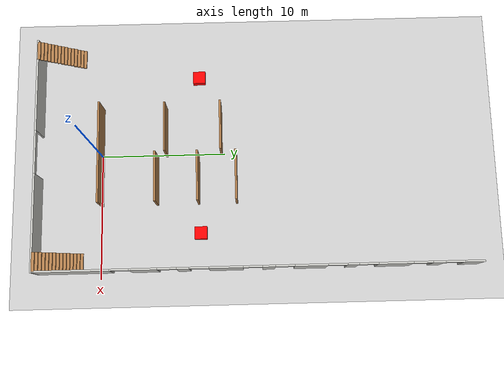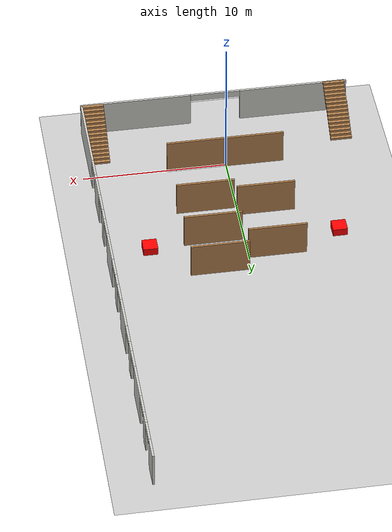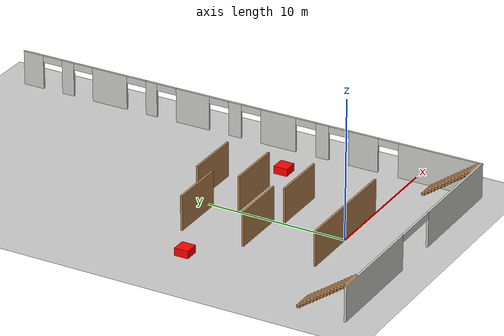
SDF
<sdf version="1.7">
 <world name="default">
  <model name="ground_plane">
   <static>1</static>
   <link name="link">
    <collision name="collision">
     <geometry><plane><normal>0 0 1</normal><size>100 100</size></plane></geometry>
     <surface>
      <contact><collide_bitmask>65535</collide_bitmask></contact>
      <friction><ode><mu>100</mu><mu2>50</mu2></ode></friction>
     </surface>
    </collision>
    <visual name="visual">
     <cast_shadows>0</cast_shadows>
     <geometry><plane><normal>0 0 1</normal><size>100 100</size></plane></geometry>
     <material>
      <script><uri>file://media/materials/scripts/gazebo.material</uri><name>Gazebo/Grey</name></script>
     </material>
    </visual>
   </link>
  </model>
  <model name="Untitled">
   <pose>0.082155 12.4683 0 0 -0 0</pose>
   <link name="Stairs_0">
    <visual name="Stairs_0_Visual_0">
     <pose>-8.52379 -14.0578 0.083333 0 -0 0</pose>
     <geometry><box><size>1.5 0.233333 0.166667</size></box></geometry>
     <material>
      <script><uri>file://media/materials/scripts/gazebo.material</uri><name>Gazebo/Wood</name></script>
      <ambient>0.760784 0.662745 0.627451 1</ambient>
     </material>
     <meta><layer>0</layer></meta>
    </visual>
    <collision name="Stairs_0_Collision_0">
     <geometry><box><size>1.5 0.233333 0.166667</size></box></geometry>
     <pose>-8.52379 -14.0578 0.083333 0 -0 0</pose>
    </collision>
    <visual name="Stairs_0_Visual_1">
     <pose>-8.52379 -14.2912 0.25 0 -0 0</pose>
     <geometry><box><size>1.5 0.233333 0.166667</size></box></geometry>
     <material>
      <script><uri>file://media/materials/scripts/gazebo.material</uri><name>Gazebo/Wood</name></script>
      <ambient>0.760784 0.662745 0.627451 1</ambient>
     </material>
     <meta><layer>0</layer></meta>
    </visual>
    <collision name="Stairs_0_Collision_1">
     <geometry><box><size>1.5 0.233333 0.166667</size></box></geometry>
     <pose>-8.52379 -14.2912 0.25 0 -0 0</pose>
    </collision>
    <visual name="Stairs_0_Visual_2">
     <pose>-8.52379 -14.5245 0.416667 0 -0 0</pose>
     <geometry><box><size>1.5 0.233333 0.166667</size></box></geometry>
     <material>
      <script><uri>file://media/materials/scripts/gazebo.material</uri><name>Gazebo/Wood</name></script>
      <ambient>0.760784 0.662745 0.627451 1</ambient>
     </material>
     <meta><layer>0</layer></meta>
    </visual>
    <collision name="Stairs_0_Collision_2">
     <geometry><box><size>1.5 0.233333 0.166667</size></box></geometry>
     <pose>-8.52379 -14.5245 0.416667 0 -0 0</pose>
    </collision>
    <visual name="Stairs_0_Visual_3">
     <pose>-8.52379 -14.7578 0.583333 0 -0 0</pose>
     <geometry><box><size>1.5 0.233333 0.166667</size></box></geometry>
     <material>
      <script><uri>file://media/materials/scripts/gazebo.material</uri><name>Gazebo/Wood</name></script>
      <ambient>0.760784 0.662745 0.627451 1</ambient>
     </material>
     <meta><layer>0</layer></meta>
    </visual>
    <collision name="Stairs_0_Collision_3">
     <geometry><box><size>1.5 0.233333 0.166667</size></box></geometry>
     <pose>-8.52379 -14.7578 0.583333 0 -0 0</pose>
    </collision>
    <visual name="Stairs_0_Visual_4">
     <pose>-8.52379 -14.9912 0.75 0 -0 0</pose>
     <geometry><box><size>1.5 0.233333 0.166667</size></box></geometry>
     <material>
      <script><uri>file://media/materials/scripts/gazebo.material</uri><name>Gazebo/Wood</name></script>
      <ambient>0.760784 0.662745 0.627451 1</ambient>
     </material>
     <meta><layer>0</layer></meta>
    </visual>
    <collision name="Stairs_0_Collision_4">
     <geometry><box><size>1.5 0.233333 0.166667</size></box></geometry>
     <pose>-8.52379 -14.9912 0.75 0 -0 0</pose>
    </collision>
    <visual name="Stairs_0_Visual_5">
     <pose>-8.52379 -15.2245 0.916667 0 -0 0</pose>
     <geometry><box><size>1.5 0.233333 0.166667</size></box></geometry>
     <material>
      <script><uri>file://media/materials/scripts/gazebo.material</uri><name>Gazebo/Wood</name></script>
      <ambient>0.760784 0.662745 0.627451 1</ambient>
     </material>
     <meta><layer>0</layer></meta>
    </visual>
    <collision name="Stairs_0_Collision_5">
     <geometry><box><size>1.5 0.233333 0.166667</size></box></geometry>
     <pose>-8.52379 -15.2245 0.916667 0 -0 0</pose>
    </collision>
    <visual name="Stairs_0_Visual_6">
     <pose>-8.52379 -15.4578 1.08333 0 -0 0</pose>
     <geometry><box><size>1.5 0.233333 0.166667</size></box></geometry>
     <material>
      <script><uri>file://media/materials/scripts/gazebo.material</uri><name>Gazebo/Wood</name></script>
      <ambient>0.760784 0.662745 0.627451 1</ambient>
     </material>
     <meta><layer>0</layer></meta>
    </visual>
    <collision name="Stairs_0_Collision_6">
     <geometry><box><size>1.5 0.233333 0.166667</size></box></geometry>
     <pose>-8.52379 -15.4578 1.08333 0 -0 0</pose>
    </collision>
    <visual name="Stairs_0_Visual_7">
     <pose>-8.52379 -15.6912 1.25 0 -0 0</pose>
     <geometry><box><size>1.5 0.233333 0.166667</size></box></geometry>
     <material>
      <script><uri>file://media/materials/scripts/gazebo.material</uri><name>Gazebo/Wood</name></script>
      <ambient>0.760784 0.662745 0.627451 1</ambient>
     </material>
     <meta><layer>0</layer></meta>
    </visual>
    <collision name="Stairs_0_Collision_7">
     <geometry><box><size>1.5 0.233333 0.166667</size></box></geometry>
     <pose>-8.52379 -15.6912 1.25 0 -0 0</pose>
    </collision>
    <visual name="Stairs_0_Visual_8">
     <pose>-8.52379 -15.9245 1.41667 0 -0 0</pose>
     <geometry><box><size>1.5 0.233333 0.166667</size></box></geometry>
     <material>
      <script><uri>file://media/materials/scripts/gazebo.material</uri><name>Gazebo/Wood</name></script>
      <ambient>0.760784 0.662745 0.627451 1</ambient>
     </material>
     <meta><layer>0</layer></meta>
    </visual>
    <collision name="Stairs_0_Collision_8">
     <geometry><box><size>1.5 0.233333 0.166667</size></box></geometry>
     <pose>-8.52379 -15.9245 1.41667 0 -0 0</pose>
    </collision>
    <visual name="Stairs_0_Visual_9">
     <pose>-8.52379 -16.1578 1.58333 0 -0 0</pose>
     <geometry><box><size>1.5 0.233333 0.166667</size></box></geometry>
     <material>
      <script><uri>file://media/materials/scripts/gazebo.material</uri><name>Gazebo/Wood</name></script>
      <ambient>0.760784 0.662745 0.627451 1</ambient>
     </material>
     <meta><layer>0</layer></meta>
    </visual>
    <collision name="Stairs_0_Collision_9">
     <geometry><box><size>1.5 0.233333 0.166667</size></box></geometry>
     <pose>-8.52379 -16.1578 1.58333 0 -0 0</pose>
    </collision>
    <visual name="Stairs_0_Visual_10">
     <pose>-8.52379 -16.3912 1.75 0 -0 0</pose>
     <geometry><box><size>1.5 0.233333 0.166667</size></box></geometry>
     <material>
      <script><uri>file://media/materials/scripts/gazebo.material</uri><name>Gazebo/Wood</name></script>
      <ambient>0.760784 0.662745 0.627451 1</ambient>
     </material>
     <meta><layer>0</layer></meta>
    </visual>
    <collision name="Stairs_0_Collision_10">
     <geometry><box><size>1.5 0.233333 0.166667</size></box></geometry>
     <pose>-8.52379 -16.3912 1.75 0 -0 0</pose>
    </collision>
    <visual name="Stairs_0_Visual_11">
     <pose>-8.52379 -16.6245 1.91667 0 -0 0</pose>
     <geometry><box><size>1.5 0.233333 0.166667</size></box></geometry>
     <material>
      <script><uri>file://media/materials/scripts/gazebo.material</uri><name>Gazebo/Wood</name></script>
      <ambient>0.760784 0.662745 0.627451 1</ambient>
     </material>
     <meta><layer>0</layer></meta>
    </visual>
    <collision name="Stairs_0_Collision_11">
     <geometry><box><size>1.5 0.233333 0.166667</size></box></geometry>
     <pose>-8.52379 -16.6245 1.91667 0 -0 0</pose>
    </collision>
    <visual name="Stairs_0_Visual_12">
     <pose>-8.52379 -16.8578 2.08333 0 -0 0</pose>
     <geometry><box><size>1.5 0.233333 0.166667</size></box></geometry>
     <material>
      <script><uri>file://media/materials/scripts/gazebo.material</uri><name>Gazebo/Wood</name></script>
      <ambient>0.760784 0.662745 0.627451 1</ambient>
     </material>
     <meta><layer>0</layer></meta>
    </visual>
    <collision name="Stairs_0_Collision_12">
     <geometry><box><size>1.5 0.233333 0.166667</size></box></geometry>
     <pose>-8.52379 -16.8578 2.08333 0 -0 0</pose>
    </collision>
    <visual name="Stairs_0_Visual_13">
     <pose>-8.52379 -17.0912 2.25 0 -0 0</pose>
     <geometry><box><size>1.5 0.233333 0.166667</size></box></geometry>
     <material>
      <script><uri>file://media/materials/scripts/gazebo.material</uri><name>Gazebo/Wood</name></script>
      <ambient>0.760784 0.662745 0.627451 1</ambient>
     </material>
     <meta><layer>0</layer></meta>
    </visual>
    <collision name="Stairs_0_Collision_13">
     <geometry><box><size>1.5 0.233333 0.166667</size></box></geometry>
     <pose>-8.52379 -17.0912 2.25 0 -0 0</pose>
    </collision>
    <visual name="Stairs_0_Visual_14">
     <pose>-8.52379 -17.3245 2.41667 0 -0 0</pose>
     <geometry><box><size>1.5 0.233333 0.166667</size></box></geometry>
     <material>
      <script><uri>file://media/materials/scripts/gazebo.material</uri><name>Gazebo/Wood</name></script>
      <ambient>0.760784 0.662745 0.627451 1</ambient>
     </material>
     <meta><layer>0</layer></meta>
    </visual>
    <collision name="Stairs_0_Collision_14">
     <geometry><box><size>1.5 0.233333 0.166667</size></box></geometry>
     <pose>-8.52379 -17.3245 2.41667 0 -0 0</pose>
    </collision>
   </link>
   <link name="Stairs_1">
    <visual name="Stairs_1_Visual_0">
     <pose>8.59136 -14.0117 0.083333 0 -0 0</pose>
     <geometry><box><size>1.5 0.233333 0.166667</size></box></geometry>
     <material>
      <script><uri>file://media/materials/scripts/gazebo.material</uri><name>Gazebo/Wood</name></script>
      <ambient>0.760784 0.662745 0.627451 1</ambient>
     </material>
     <meta><layer>0</layer></meta>
    </visual>
    <collision name="Stairs_1_Collision_0">
     <geometry><box><size>1.5 0.233333 0.166667</size></box></geometry>
     <pose>8.59136 -14.0117 0.083333 0 -0 0</pose>
    </collision>
    <visual name="Stairs_1_Visual_1">
     <pose>8.59136 -14.2451 0.25 0 -0 0</pose>
     <geometry><box><size>1.5 0.233333 0.166667</size></box></geometry>
     <material>
      <script><uri>file://media/materials/scripts/gazebo.material</uri><name>Gazebo/Wood</name></script>
      <ambient>0.760784 0.662745 0.627451 1</ambient>
     </material>
     <meta><layer>0</layer></meta>
    </visual>
    <collision name="Stairs_1_Collision_1">
     <geometry><box><size>1.5 0.233333 0.166667</size></box></geometry>
     <pose>8.59136 -14.2451 0.25 0 -0 0</pose>
    </collision>
    <visual name="Stairs_1_Visual_2">
     <pose>8.59136 -14.4784 0.416667 0 -0 0</pose>
     <geometry><box><size>1.5 0.233333 0.166667</size></box></geometry>
     <material>
      <script><uri>file://media/materials/scripts/gazebo.material</uri><name>Gazebo/Wood</name></script>
      <ambient>0.760784 0.662745 0.627451 1</ambient>
     </material>
     <meta><layer>0</layer></meta>
    </visual>
    <collision name="Stairs_1_Collision_2">
     <geometry><box><size>1.5 0.233333 0.166667</size></box></geometry>
     <pose>8.59136 -14.4784 0.416667 0 -0 0</pose>
    </collision>
    <visual name="Stairs_1_Visual_3">
     <pose>8.59136 -14.7117 0.583333 0 -0 0</pose>
     <geometry><box><size>1.5 0.233333 0.166667</size></box></geometry>
     <material>
      <script><uri>file://media/materials/scripts/gazebo.material</uri><name>Gazebo/Wood</name></script>
      <ambient>0.760784 0.662745 0.627451 1</ambient>
     </material>
     <meta><layer>0</layer></meta>
    </visual>
    <collision name="Stairs_1_Collision_3">
     <geometry><box><size>1.5 0.233333 0.166667</size></box></geometry>
     <pose>8.59136 -14.7117 0.583333 0 -0 0</pose>
    </collision>
    <visual name="Stairs_1_Visual_4">
     <pose>8.59136 -14.9451 0.75 0 -0 0</pose>
     <geometry><box><size>1.5 0.233333 0.166667</size></box></geometry>
     <material>
      <script><uri>file://media/materials/scripts/gazebo.material</uri><name>Gazebo/Wood</name></script>
      <ambient>0.760784 0.662745 0.627451 1</ambient>
     </material>
     <meta><layer>0</layer></meta>
    </visual>
    <collision name="Stairs_1_Collision_4">
     <geometry><box><size>1.5 0.233333 0.166667</size></box></geometry>
     <pose>8.59136 -14.9451 0.75 0 -0 0</pose>
    </collision>
    <visual name="Stairs_1_Visual_5">
     <pose>8.59136 -15.1784 0.916667 0 -0 0</pose>
     <geometry><box><size>1.5 0.233333 0.166667</size></box></geometry>
     <material>
      <script><uri>file://media/materials/scripts/gazebo.material</uri><name>Gazebo/Wood</name></script>
      <ambient>0.760784 0.662745 0.627451 1</ambient>
     </material>
     <meta><layer>0</layer></meta>
    </visual>
    <collision name="Stairs_1_Collision_5">
     <geometry><box><size>1.5 0.233333 0.166667</size></box></geometry>
     <pose>8.59136 -15.1784 0.916667 0 -0 0</pose>
    </collision>
    <visual name="Stairs_1_Visual_6">
     <pose>8.59136 -15.4117 1.08333 0 -0 0</pose>
     <geometry><box><size>1.5 0.233333 0.166667</size></box></geometry>
     <material>
      <script><uri>file://media/materials/scripts/gazebo.material</uri><name>Gazebo/Wood</name></script>
      <ambient>0.760784 0.662745 0.627451 1</ambient>
     </material>
     <meta><layer>0</layer></meta>
    </visual>
    <collision name="Stairs_1_Collision_6">
     <geometry><box><size>1.5 0.233333 0.166667</size></box></geometry>
     <pose>8.59136 -15.4117 1.08333 0 -0 0</pose>
    </collision>
    <visual name="Stairs_1_Visual_7">
     <pose>8.59136 -15.6451 1.25 0 -0 0</pose>
     <geometry><box><size>1.5 0.233333 0.166667</size></box></geometry>
     <material>
      <script><uri>file://media/materials/scripts/gazebo.material</uri><name>Gazebo/Wood</name></script>
      <ambient>0.760784 0.662745 0.627451 1</ambient>
     </material>
     <meta><layer>0</layer></meta>
    </visual>
    <collision name="Stairs_1_Collision_7">
     <geometry><box><size>1.5 0.233333 0.166667</size></box></geometry>
     <pose>8.59136 -15.6451 1.25 0 -0 0</pose>
    </collision>
    <visual name="Stairs_1_Visual_8">
     <pose>8.59136 -15.8784 1.41667 0 -0 0</pose>
     <geometry><box><size>1.5 0.233333 0.166667</size></box></geometry>
     <material>
      <script><uri>file://media/materials/scripts/gazebo.material</uri><name>Gazebo/Wood</name></script>
      <ambient>0.760784 0.662745 0.627451 1</ambient>
     </material>
     <meta><layer>0</layer></meta>
    </visual>
    <collision name="Stairs_1_Collision_8">
     <geometry><box><size>1.5 0.233333 0.166667</size></box></geometry>
     <pose>8.59136 -15.8784 1.41667 0 -0 0</pose>
    </collision>
    <visual name="Stairs_1_Visual_9">
     <pose>8.59136 -16.1117 1.58333 0 -0 0</pose>
     <geometry><box><size>1.5 0.233333 0.166667</size></box></geometry>
     <material>
      <script><uri>file://media/materials/scripts/gazebo.material</uri><name>Gazebo/Wood</name></script>
      <ambient>0.760784 0.662745 0.627451 1</ambient>
     </material>
     <meta><layer>0</layer></meta>
    </visual>
    <collision name="Stairs_1_Collision_9">
     <geometry><box><size>1.5 0.233333 0.166667</size></box></geometry>
     <pose>8.59136 -16.1117 1.58333 0 -0 0</pose>
    </collision>
    <visual name="Stairs_1_Visual_10">
     <pose>8.59136 -16.3451 1.75 0 -0 0</pose>
     <geometry><box><size>1.5 0.233333 0.166667</size></box></geometry>
     <material>
      <script><uri>file://media/materials/scripts/gazebo.material</uri><name>Gazebo/Wood</name></script>
      <ambient>0.760784 0.662745 0.627451 1</ambient>
     </material>
     <meta><layer>0</layer></meta>
    </visual>
    <collision name="Stairs_1_Collision_10">
     <geometry><box><size>1.5 0.233333 0.166667</size></box></geometry>
     <pose>8.59136 -16.3451 1.75 0 -0 0</pose>
    </collision>
    <visual name="Stairs_1_Visual_11">
     <pose>8.59136 -16.5784 1.91667 0 -0 0</pose>
     <geometry><box><size>1.5 0.233333 0.166667</size></box></geometry>
     <material>
      <script><uri>file://media/materials/scripts/gazebo.material</uri><name>Gazebo/Wood</name></script>
      <ambient>0.760784 0.662745 0.627451 1</ambient>
     </material>
     <meta><layer>0</layer></meta>
    </visual>
    <collision name="Stairs_1_Collision_11">
     <geometry><box><size>1.5 0.233333 0.166667</size></box></geometry>
     <pose>8.59136 -16.5784 1.91667 0 -0 0</pose>
    </collision>
    <visual name="Stairs_1_Visual_12">
     <pose>8.59136 -16.8117 2.08333 0 -0 0</pose>
     <geometry><box><size>1.5 0.233333 0.166667</size></box></geometry>
     <material>
      <script><uri>file://media/materials/scripts/gazebo.material</uri><name>Gazebo/Wood</name></script>
      <ambient>0.760784 0.662745 0.627451 1</ambient>
     </material>
     <meta><layer>0</layer></meta>
    </visual>
    <collision name="Stairs_1_Collision_12">
     <geometry><box><size>1.5 0.233333 0.166667</size></box></geometry>
     <pose>8.59136 -16.8117 2.08333 0 -0 0</pose>
    </collision>
    <visual name="Stairs_1_Visual_13">
     <pose>8.59136 -17.0451 2.25 0 -0 0</pose>
     <geometry><box><size>1.5 0.233333 0.166667</size></box></geometry>
     <material>
      <script><uri>file://media/materials/scripts/gazebo.material</uri><name>Gazebo/Wood</name></script>
      <ambient>0.760784 0.662745 0.627451 1</ambient>
     </material>
     <meta><layer>0</layer></meta>
    </visual>
    <collision name="Stairs_1_Collision_13">
     <geometry><box><size>1.5 0.233333 0.166667</size></box></geometry>
     <pose>8.59136 -17.0451 2.25 0 -0 0</pose>
    </collision>
    <visual name="Stairs_1_Visual_14">
     <pose>8.59136 -17.2784 2.41667 0 -0 0</pose>
     <geometry><box><size>1.5 0.233333 0.166667</size></box></geometry>
     <material>
      <script><uri>file://media/materials/scripts/gazebo.material</uri><name>Gazebo/Wood</name></script>
      <ambient>0.760784 0.662745 0.627451 1</ambient>
     </material>
     <meta><layer>0</layer></meta>
    </visual>
    <collision name="Stairs_1_Collision_14">
     <geometry><box><size>1.5 0.233333 0.166667</size></box></geometry>
     <pose>8.59136 -17.2784 2.41667 0 -0 0</pose>
    </collision>
   </link>
   <link name="Wall_28">
    <pose>9.35683 0 0 0 -0 -1.5708</pose>
    <visual name="Wall_28_Visual_0">
     <pose>-16.7222 0 1.25 0 -0 0</pose>
     <geometry><box><size>1.5557 0.15 2.5</size></box></geometry>
     <material>
      <script><uri>file://media/materials/scripts/gazebo.material</uri><name>Gazebo/CeilingTiled</name></script>
      <ambient>0.921569 0.807843 0.615686 1</ambient>
     </material>
     <meta><layer>0</layer></meta>
    </visual>
    <collision name="Wall_28_Collision_0">
     <geometry><box><size>1.5557 0.15 2.5</size></box></geometry>
     <pose>-16.7222 0 1.25 0 -0 0</pose>
    </collision>
    <visual name="Wall_28_Visual_1">
     <pose>-13.9727 0 1.25 0 -0 0</pose>
     <geometry><box><size>0.943169 0.15 2.5</size></box></geometry>
     <material>
      <script><uri>file://media/materials/scripts/gazebo.material</uri><name>Gazebo/CeilingTiled</name></script>
      <ambient>0.921569 0.807843 0.615686 1</ambient>
     </material>
     <meta><layer>0</layer></meta>
    </visual>
    <collision name="Wall_28_Collision_1">
     <geometry><box><size>0.943169 0.15 2.5</size></box></geometry>
     <pose>-13.9727 0 1.25 0 -0 0</pose>
    </collision>
    <visual name="Wall_28_Visual_2">
     <pose>-10.6457 0 1.25 0 -0 0</pose>
     <geometry><box><size>2.71078 0.15 2.5</size></box></geometry>
     <material>
      <script><uri>file://media/materials/scripts/gazebo.material</uri><name>Gazebo/CeilingTiled</name></script>
      <ambient>0.921569 0.807843 0.615686 1</ambient>
     </material>
     <meta><layer>0</layer></meta>
    </visual>
    <collision name="Wall_28_Collision_2">
     <geometry><box><size>2.71078 0.15 2.5</size></box></geometry>
     <pose>-10.6457 0 1.25 0 -0 0</pose>
    </collision>
    <visual name="Wall_28_Visual_3">
     <pose>-7.35399 0 1.25 0 -0 0</pose>
     <geometry><box><size>0.872719 0.15 2.5</size></box></geometry>
     <material>
      <script><uri>file://media/materials/scripts/gazebo.material</uri><name>Gazebo/CeilingTiled</name></script>
      <ambient>0.921569 0.807843 0.615686 1</ambient>
     </material>
     <meta><layer>0</layer></meta>
    </visual>
    <collision name="Wall_28_Collision_3">
     <geometry><box><size>0.872719 0.15 2.5</size></box></geometry>
     <pose>-7.35399 0 1.25 0 -0 0</pose>
    </collision>
    <visual name="Wall_28_Visual_4">
     <pose>-4.13625 0 1.25 0 -0 0</pose>
     <geometry><box><size>2.56276 0.15 2.5</size></box></geometry>
     <material>
      <script><uri>file://media/materials/scripts/gazebo.material</uri><name>Gazebo/CeilingTiled</name></script>
      <ambient>0.921569 0.807843 0.615686 1</ambient>
     </material>
     <meta><layer>0</layer></meta>
    </visual>
    <collision name="Wall_28_Collision_4">
     <geometry><box><size>2.56276 0.15 2.5</size></box></geometry>
     <pose>-4.13625 0 1.25 0 -0 0</pose>
    </collision>
    <visual name="Wall_28_Visual_5">
     <pose>-0.865969 0 1.25 0 -0 0</pose>
     <geometry><box><size>0.977809 0.15 2.5</size></box></geometry>
     <material>
      <script><uri>file://media/materials/scripts/gazebo.material</uri><name>Gazebo/CeilingTiled</name></script>
      <ambient>0.921569 0.807843 0.615686 1</ambient>
     </material>
     <meta><layer>0</layer></meta>
    </visual>
    <collision name="Wall_28_Collision_5">
     <geometry><box><size>0.977809 0.15 2.5</size></box></geometry>
     <pose>-0.865969 0 1.25 0 -0 0</pose>
    </collision>
    <visual name="Wall_28_Visual_6">
     <pose>2.45268 0 1.25 0 -0 0</pose>
     <geometry><box><size>2.6595 0.15 2.5</size></box></geometry>
     <material>
      <script><uri>file://media/materials/scripts/gazebo.material</uri><name>Gazebo/CeilingTiled</name></script>
      <ambient>0.921569 0.807843 0.615686 1</ambient>
     </material>
     <meta><layer>0</layer></meta>
    </visual>
    <collision name="Wall_28_Collision_6">
     <geometry><box><size>2.6595 0.15 2.5</size></box></geometry>
     <pose>2.45268 0 1.25 0 -0 0</pose>
    </collision>
    <visual name="Wall_28_Visual_7">
     <pose>5.76934 0 1.25 0 -0 0</pose>
     <geometry><box><size>0.973819 0.15 2.5</size></box></geometry>
     <material>
      <script><uri>file://media/materials/scripts/gazebo.material</uri><name>Gazebo/CeilingTiled</name></script>
      <ambient>0.921569 0.807843 0.615686 1</ambient>
     </material>
     <meta><layer>0</layer></meta>
    </visual>
    <collision name="Wall_28_Collision_7">
     <geometry><box><size>0.973819 0.15 2.5</size></box></geometry>
     <pose>5.76934 0 1.25 0 -0 0</pose>
    </collision>
    <visual name="Wall_28_Visual_8">
     <pose>8.84167 0 1.25 0 -0 0</pose>
     <geometry><box><size>2.17083 0.15 2.5</size></box></geometry>
     <material>
      <script><uri>file://media/materials/scripts/gazebo.material</uri><name>Gazebo/CeilingTiled</name></script>
      <ambient>0.921569 0.807843 0.615686 1</ambient>
     </material>
     <meta><layer>0</layer></meta>
    </visual>
    <collision name="Wall_28_Collision_8">
     <geometry><box><size>2.17083 0.15 2.5</size></box></geometry>
     <pose>8.84167 0 1.25 0 -0 0</pose>
    </collision>
    <visual name="Wall_28_Visual_9">
     <pose>14.4635 0 1.25 0 -0 0</pose>
     <geometry><box><size>6.07292 0.15 2.5</size></box></geometry>
     <material>
      <script><uri>file://media/materials/scripts/gazebo.material</uri><name>Gazebo/CeilingTiled</name></script>
      <ambient>0.921569 0.807843 0.615686 1</ambient>
     </material>
     <meta><layer>0</layer></meta>
    </visual>
    <collision name="Wall_28_Collision_9">
     <geometry><box><size>6.07292 0.15 2.5</size></box></geometry>
     <pose>14.4635 0 1.25 0 -0 0</pose>
    </collision>
    <visual name="Wall_28_Visual_10">
     <pose>-15.1943 0 2.25 0 -0 0</pose>
     <geometry><box><size>1.5 0.15 0.5</size></box></geometry>
     <material>
      <script><uri>file://media/materials/scripts/gazebo.material</uri><name>Gazebo/CeilingTiled</name></script>
      <ambient>0.921569 0.807843 0.615686 1</ambient>
     </material>
     <meta><layer>0</layer></meta>
    </visual>
    <collision name="Wall_28_Collision_10">
     <geometry><box><size>1.5 0.15 0.5</size></box></geometry>
     <pose>-15.1943 0 2.25 0 -0 0</pose>
    </collision>
    <visual name="Wall_28_Visual_11">
     <pose>-12.7511 0 2.25 0 -0 0</pose>
     <geometry><box><size>1.5 0.15 0.5</size></box></geometry>
     <material>
      <script><uri>file://media/materials/scripts/gazebo.material</uri><name>Gazebo/CeilingTiled</name></script>
      <ambient>0.921569 0.807843 0.615686 1</ambient>
     </material>
     <meta><layer>0</layer></meta>
    </visual>
    <collision name="Wall_28_Collision_11">
     <geometry><box><size>1.5 0.15 0.5</size></box></geometry>
     <pose>-12.7511 0 2.25 0 -0 0</pose>
    </collision>
    <visual name="Wall_28_Visual_12">
     <pose>-8.54035 0 2.25 0 -0 0</pose>
     <geometry><box><size>1.5 0.15 0.5</size></box></geometry>
     <material>
      <script><uri>file://media/materials/scripts/gazebo.material</uri><name>Gazebo/CeilingTiled</name></script>
      <ambient>0.921569 0.807843 0.615686 1</ambient>
     </material>
     <meta><layer>0</layer></meta>
    </visual>
    <collision name="Wall_28_Collision_12">
     <geometry><box><size>1.5 0.15 0.5</size></box></geometry>
     <pose>-8.54035 0 2.25 0 -0 0</pose>
    </collision>
    <visual name="Wall_28_Visual_13">
     <pose>-6.16763 0 2.25 0 -0 0</pose>
     <geometry><box><size>1.5 0.15 0.5</size></box></geometry>
     <material>
      <script><uri>file://media/materials/scripts/gazebo.material</uri><name>Gazebo/CeilingTiled</name></script>
      <ambient>0.921569 0.807843 0.615686 1</ambient>
     </material>
     <meta><layer>0</layer></meta>
    </visual>
    <collision name="Wall_28_Collision_13">
     <geometry><box><size>1.5 0.15 0.5</size></box></geometry>
     <pose>-6.16763 0 2.25 0 -0 0</pose>
    </collision>
    <visual name="Wall_28_Visual_14">
     <pose>-2.10487 0 2.25 0 -0 0</pose>
     <geometry><box><size>1.5 0.15 0.5</size></box></geometry>
     <material>
      <script><uri>file://media/materials/scripts/gazebo.material</uri><name>Gazebo/CeilingTiled</name></script>
      <ambient>0.921569 0.807843 0.615686 1</ambient>
     </material>
     <meta><layer>0</layer></meta>
    </visual>
    <collision name="Wall_28_Collision_14">
     <geometry><box><size>1.5 0.15 0.5</size></box></geometry>
     <pose>-2.10487 0 2.25 0 -0 0</pose>
    </collision>
    <visual name="Wall_28_Visual_15">
     <pose>0.372935 0 2.25 0 -0 0</pose>
     <geometry><box><size>1.5 0.15 0.5</size></box></geometry>
     <material>
      <script><uri>file://media/materials/scripts/gazebo.material</uri><name>Gazebo/CeilingTiled</name></script>
      <ambient>0.921569 0.807843 0.615686 1</ambient>
     </material>
     <meta><layer>0</layer></meta>
    </visual>
    <collision name="Wall_28_Collision_15">
     <geometry><box><size>1.5 0.15 0.5</size></box></geometry>
     <pose>0.372935 0 2.25 0 -0 0</pose>
    </collision>
    <visual name="Wall_28_Visual_16">
     <pose>4.53243 0 2.25 0 -0 0</pose>
     <geometry><box><size>1.5 0.15 0.5</size></box></geometry>
     <material>
      <script><uri>file://media/materials/scripts/gazebo.material</uri><name>Gazebo/CeilingTiled</name></script>
      <ambient>0.921569 0.807843 0.615686 1</ambient>
     </material>
     <meta><layer>0</layer></meta>
    </visual>
    <collision name="Wall_28_Collision_16">
     <geometry><box><size>1.5 0.15 0.5</size></box></geometry>
     <pose>4.53243 0 2.25 0 -0 0</pose>
    </collision>
    <visual name="Wall_28_Visual_17">
     <pose>7.00625 0 2.25 0 -0 0</pose>
     <geometry><box><size>1.5 0.15 0.5</size></box></geometry>
     <material>
      <script><uri>file://media/materials/scripts/gazebo.material</uri><name>Gazebo/CeilingTiled</name></script>
      <ambient>0.921569 0.807843 0.615686 1</ambient>
     </material>
     <meta><layer>0</layer></meta>
    </visual>
    <collision name="Wall_28_Collision_17">
     <geometry><box><size>1.5 0.15 0.5</size></box></geometry>
     <pose>7.00625 0 2.25 0 -0 0</pose>
    </collision>
    <visual name="Wall_28_Visual_18">
     <pose>10.6771 0 2.25 0 -0 0</pose>
     <geometry><box><size>1.5 0.15 0.5</size></box></geometry>
     <material>
      <script><uri>file://media/materials/scripts/gazebo.material</uri><name>Gazebo/CeilingTiled</name></script>
      <ambient>0.921569 0.807843 0.615686 1</ambient>
     </material>
     <meta><layer>0</layer></meta>
    </visual>
    <collision name="Wall_28_Collision_18">
     <geometry><box><size>1.5 0.15 0.5</size></box></geometry>
     <pose>10.6771 0 2.25 0 -0 0</pose>
    </collision>
   </link>
   <link name="Wall_34">
    <pose>0 -17.425 0 0 -0 3.14159</pose>
    <visual name="Wall_34_Visual_0">
     <pose>-5.54402 0 1.25 0 -0 0</pose>
     <geometry><box><size>7.77563 0.15 2.5</size></box></geometry>
     <material>
      <script><uri>file://media/materials/scripts/gazebo.material</uri><name>Gazebo/CeilingTiled</name></script>
      <ambient>0.760784 0.662745 0.627451 1</ambient>
     </material>
     <meta><layer>0</layer></meta>
    </visual>
    <collision name="Wall_34_Collision_0">
     <geometry><box><size>7.77563 0.15 2.5</size></box></geometry>
     <pose>-5.54402 0 1.25 0 -0 0</pose>
    </collision>
    <visual name="Wall_34_Visual_1">
     <pose>5.63781 0 1.25 0 -0 0</pose>
     <geometry><box><size>7.58804 0.15 2.5</size></box></geometry>
     <material>
      <script><uri>file://media/materials/scripts/gazebo.material</uri><name>Gazebo/CeilingTiled</name></script>
      <ambient>0.760784 0.662745 0.627451 1</ambient>
     </material>
     <meta><layer>0</layer></meta>
    </visual>
    <collision name="Wall_34_Collision_1">
     <geometry><box><size>7.58804 0.15 2.5</size></box></geometry>
     <pose>5.63781 0 1.25 0 -0 0</pose>
    </collision>
    <visual name="Wall_34_Visual_2">
     <pose>0.093795 0 2.25 0 -0 0</pose>
     <geometry><box><size>3.5 0.15 0.5</size></box></geometry>
     <material>
      <script><uri>file://media/materials/scripts/gazebo.material</uri><name>Gazebo/CeilingTiled</name></script>
      <ambient>0.760784 0.662745 0.627451 1</ambient>
     </material>
     <meta><layer>0</layer></meta>
    </visual>
    <collision name="Wall_34_Collision_2">
     <geometry><box><size>3.5 0.15 0.5</size></box></geometry>
     <pose>0.093795 0 2.25 0 -0 0</pose>
    </collision>
   </link>
   <link name="Wall_45">
    <collision name="Wall_45_Collision">
     <geometry><box><size>8.16366 0.15 2.5</size></box></geometry>
     <pose>0 0 1.25 0 -0 0</pose>
    </collision>
    <visual name="Wall_45_Visual">
     <pose>0 0 1.25 0 -0 0</pose>
     <geometry><box><size>8.16366 0.15 2.5</size></box></geometry>
     <material>
      <script><uri>file://media/materials/scripts/gazebo.material</uri><name>Gazebo/Wood</name></script>
      <ambient>1 1 1 1</ambient>
     </material>
     <meta><layer>0</layer></meta>
    </visual>
    <pose>0 -12.425 0 0 -0 3.14159</pose>
   </link>
   <link name="Wall_53">
    <collision name="Wall_53_Collision">
     <geometry><box><size>4 0.15 2.5</size></box></geometry>
     <pose>0 0 1.25 0 -0 0</pose>
    </collision>
    <visual name="Wall_53_Visual">
     <pose>0 0 1.25 0 -0 0</pose>
     <geometry><box><size>4 0.15 2.5</size></box></geometry>
     <material>
      <script><uri>file://media/materials/scripts/gazebo.material</uri><name>Gazebo/Wood</name></script>
      <ambient>1 1 1 1</ambient>
     </material>
     <meta><layer>0</layer></meta>
    </visual>
    <pose>-1.96559 -7.18647 0 0 -0 0</pose>
   </link>
   <link name="Wall_55">
    <collision name="Wall_55_Collision">
     <geometry><box><size>4 0.15 2.5</size></box></geometry>
     <pose>0 0 1.25 0 -0 0</pose>
    </collision>
    <visual name="Wall_55_Visual">
     <pose>0 0 1.25 0 -0 0</pose>
     <geometry><box><size>4 0.15 2.5</size></box></geometry>
     <material>
      <script><uri>file://media/materials/scripts/gazebo.material</uri><name>Gazebo/Wood</name></script>
      <ambient>1 1 1 1</ambient>
     </material>
     <meta><layer>0</layer></meta>
    </visual>
    <pose>-2.02129 -2.72356 0 0 -0 0</pose>
   </link>
   <link name="Wall_65">
    <collision name="Wall_65_Collision">
     <geometry><box><size>4 0.15 2.5</size></box></geometry>
     <pose>0 0 1.25 0 -0 0</pose>
    </collision>
    <visual name="Wall_65_Visual">
     <pose>0 0 1.25 0 -0 0</pose>
     <geometry><box><size>4 0.15 2.5</size></box></geometry>
     <material>
      <script><uri>file://media/materials/scripts/gazebo.material</uri><name>Gazebo/Wood</name></script>
      <ambient>1 1 1 1</ambient>
     </material>
     <meta><layer>0</layer></meta>
    </visual>
    <pose>2.07294 -7.95092 0 0 -0 3.14159</pose>
   </link>
   <link name="Wall_67">
    <collision name="Wall_67_Collision">
     <geometry><box><size>4 0.15 2.5</size></box></geometry>
     <pose>0 0 1.25 0 -0 0</pose>
    </collision>
    <visual name="Wall_67_Visual">
     <pose>0 0 1.25 0 -0 0</pose>
     <geometry><box><size>4 0.15 2.5</size></box></geometry>
     <material>
      <script><uri>file://media/materials/scripts/gazebo.material</uri><name>Gazebo/Wood</name></script>
      <ambient>1 1 1 1</ambient>
     </material>
     <meta><layer>0</layer></meta>
    </visual>
    <pose>2.06864 -4.5994 0 0 -0 3.14159</pose>
   </link>
   <link name="Wall_69">
    <collision name="Wall_69_Collision">
     <geometry><box><size>4 0.15 2.5</size></box></geometry>
     <pose>0 0 1.25 0 -0 0</pose>
    </collision>
    <visual name="Wall_69_Visual">
     <pose>0 0 1.25 0 -0 0</pose>
     <geometry><box><size>4 0.15 2.5</size></box></geometry>
     <material>
      <script><uri>file://media/materials/scripts/gazebo.material</uri><name>Gazebo/Wood</name></script>
      <ambient>1 1 1 1</ambient>
     </material>
     <meta><layer>0</layer></meta>
    </visual>
    <pose>2.06864 -1.54176 0 0 -0 3.14159</pose>
   </link>
   <static>1</static>
  </model>
  <model name="static_obstacle_01">
   <pose>6.5 8.0 0 0 0 0</pose>
   <static>true</static>
   <link name="obstacle_link">
    <visual name="obstacle_visual">
     <geometry><box><size>1 1 1</size></box></geometry>
     <material><ambient>1 0 0 1</ambient><diffuse>1 0 0 1</diffuse></material>
    </visual>
    <collision name="obstacle_collision">
     <geometry><box><size>1 1 1</size></box></geometry>
     <surface><friction><ode><mu>1.0</mu><mu2>1.0</mu2></ode></friction></surface>
    </collision>
   </link>
  </model>
  <model name="static_obstacle_03">
   <pose>-6.5 8.0 0 0 0 0</pose>
   <static>true</static>
   <link name="obstacle_link">
    <visual name="obstacle_visual">
     <geometry><box><size>1 1 1</size></box></geometry>
     <material><ambient>1 0 0 1</ambient><diffuse>1 0 0 1</diffuse></material>
    </visual>
    <collision name="obstacle_collision">
     <geometry><box><size>1 1 1</size></box></geometry>
     <surface><friction><ode><mu>1.0</mu><mu2>1.0</mu2></ode></friction></surface>
    </collision>
   </link>
  </model>
 </world>
</sdf>
